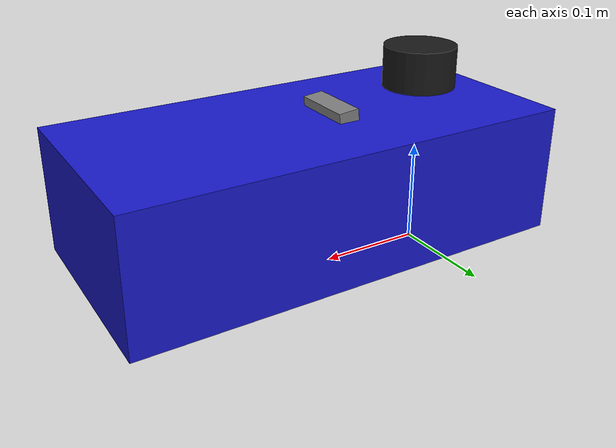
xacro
<?xml version="1.0"?>
<robot xmlns:xacro="http://www.ros.org/wiki/xacro" name="covapsy_car">

  <!-- TT-02 1/10 scale car URDF for TF and visualization -->

  <xacro:property name="wheelbase" value="0.257"/>
  <xacro:property name="track_width" value="0.20"/>
  <xacro:property name="car_length" value="0.42"/>
  <xacro:property name="car_width" value="0.20"/>
  <xacro:property name="car_height" value="0.12"/>
  <xacro:property name="wheel_radius" value="0.033"/>
  <xacro:property name="wheel_width" value="0.026"/>

  <!-- Base link (center of rear axle) -->
  <link name="base_link">
    <visual>
      <geometry>
        <box size="${car_length} ${car_width} ${car_height}"/>
      </geometry>
      <origin xyz="${wheelbase/2} 0 ${car_height/2}" rpy="0 0 0"/>
      <material name="blue">
        <color rgba="0.1 0.1 0.8 1.0"/>
      </material>
    </visual>
  </link>

  <!-- Base footprint (ground plane) -->
  <link name="base_footprint"/>
  <joint name="base_footprint_joint" type="fixed">
    <parent link="base_footprint"/>
    <child link="base_link"/>
    <origin xyz="0 0 ${wheel_radius}" rpy="0 0 0"/>
  </joint>

  <!-- LiDAR -->
  <link name="laser">
    <visual>
      <geometry>
        <cylinder length="0.04" radius="0.035"/>
      </geometry>
      <material name="black">
        <color rgba="0.1 0.1 0.1 1.0"/>
      </material>
    </visual>
  </link>
  <joint name="laser_joint" type="fixed">
    <parent link="base_link"/>
    <child link="laser"/>
    <origin xyz="0 0 0.15" rpy="0 0 0"/>
  </joint>

  <!-- Camera -->
  <link name="camera_link">
    <visual>
      <geometry>
        <box size="0.02 0.06 0.02"/>
      </geometry>
      <material name="gray">
        <color rgba="0.5 0.5 0.5 1.0"/>
      </material>
    </visual>
  </link>
  <joint name="camera_joint" type="fixed">
    <parent link="base_link"/>
    <child link="camera_link"/>
    <origin xyz="0.10 0 0.12" rpy="0 0.1 0"/>
  </joint>

</robot>
